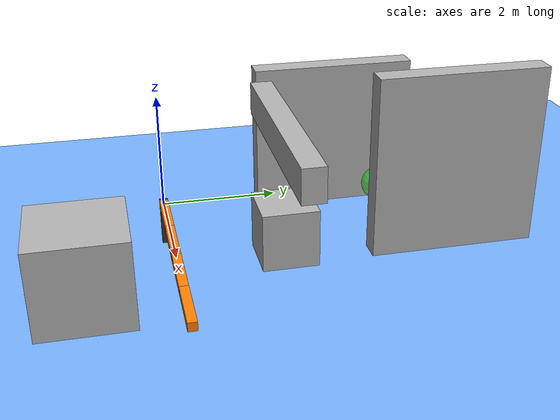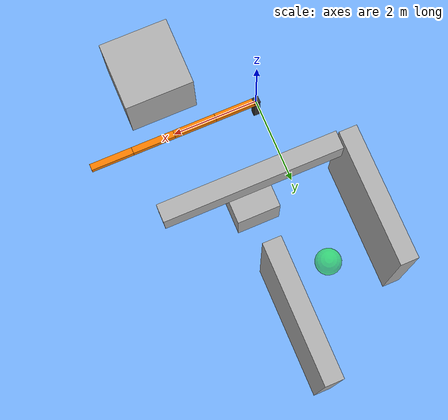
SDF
<?xml version="1.0" ?>
<sdf version='1.6'>
<world name='world'>
    <physics type="ode">
      <max_step_size>0.004</max_step_size>
      <max_contacts>5</max_contacts>
      <ode>
        <solver>
          <iters>25</iters>
          <type>world</type>
          <sor>1.3</sor>
          <use_dynamic_moi_rescaling>0</use_dynamic_moi_rescaling>
        </solver>
        <constraints>
          <cfm>0.0</cfm>
          <contact_surface_layer>0.0</contact_surface_layer>
        </constraints>
      </ode>
    </physics>
    <model name='GoalArea'>
      <pose frame=''>0 4.0 0.0 0 -0 0</pose>
      <static>1</static>
      <link name='chassis'>
        <visual name='GoalArea_visual'>
          <pose>0 0 0 0 0 0</pose>
          <geometry>
            <sphere>
              <radius>0.3</radius>
            </sphere>
          </geometry>
          <material>
            <script>
              <uri>file://media/materials/scripts/gazebo.material</uri>
              <name>Gazebo/Grey</name>
            </script>
            <ambient>0 1 0 0.5</ambient>
          </material>
        </visual>
        <self_collide>0</self_collide>
        <kinematic>0</kinematic>
      </link>
    </model>

    <model name="4DOFManipulator">
      <static>false</static>
      <include>
        <uri>model://4DOFManipulator</uri>
        <pose>0.0 0.0 0.0 0 0 0</pose>
      </include>
    </model>

  <model name="foor">
      <pose frame=''>0 0 -0.75 0 0 0</pose>
      <static>1</static>
      <link name="foorlink">
      <visual name="foorvisual">
        <geometry>
          <box>
            <size>100 100 0.005</size>
          </box>
        </geometry>
        <material>
            <ambient>0.46274509803921568627 0.6980392156862745098 1 1.0</ambient>
          </material>
      </visual>
      <collision name="foorcollision">
        <geometry>
          <box>
            <size>10 10 0.005</size>
          </box>
        </geometry>
      </collision>
    </link>
  </model>

  <model name="base">
      <pose frame=''>0 0 -0.425 0 0 0</pose>
      <static>1</static>
      <link name="baselink">
      <visual name="basevisual">
        <geometry>
          <box>
            <size>0.15 0.15 1</size>
          </box>
        </geometry>
        <material>
          <ambient>0.2 0.2 0.2 1.0</ambient>
        </material>
      </visual>
    </link>
  </model>

  <model name="box1">
      <pose frame=''>-1.2 3.4 -1.0 0 0 0</pose>
      <static>1</static>
      <link name="box1link">
      <visual name="box1visual">
        <geometry>
          <box>
            <size>0.4 3.0 6.0</size>
          </box>
        </geometry>
        <material>
          <ambient>0.7 0.7 0.7 1.0</ambient>
        </material>
      </visual>
      <collision name="box1collision">
        <geometry>
          <box>
            <size>0.4 3.0 6.0</size>
          </box>
        </geometry>
      </collision>
    </link>
  </model>

  <model name="box2">
      <pose frame=''>1.2 5.0 -0.5 0 0 0</pose>
      <static>1</static>
      <link name="box2link">
      <visual name="box2visual">
        <geometry>
          <box>
            <size>0.4 3.0 6.0</size>
          </box>
        </geometry>
        <material>
          <ambient>0.7 0.7 0.7 1.0</ambient>
        </material>
      </visual>
      <collision name="box2collision">
        <geometry>
          <box>
            <size>0.4 3.0 6.0</size>
          </box>
        </geometry>
      </collision>
    </link>
  </model>

  <model name="box3">
      <pose frame=''>1.0 2.0 -0.5 0 0 0</pose>
      <static>1</static>
      <link name="box3link">
      <visual name="box3visual">
        <geometry>
          <box>
            <size>1.0 1.0 1.6</size>
          </box>
        </geometry>
        <material>
          <ambient>0.7 0.7 0.7 1.0</ambient>
        </material>
      </visual>
      <collision name="box3collision">
        <geometry>
          <box>
            <size>1.0 1.0 1.6</size>
          </box>
        </geometry>
      </collision>
    </link>
  </model>

  <model name="box4">
      <pose frame=''>1.0 2.0 1.5 0 0 0</pose>
      <static>1</static>
      <link name="box4link">
      <visual name="box4visual">
        <geometry>
          <box>
            <size>4.0 0.4 0.6</size>
          </box>
        </geometry>
        <material>
          <ambient>0.7 0.7 0.7 1.0</ambient>
        </material>
      </visual>
      <collision name="box3collision">
        <geometry>
          <box>
            <size>4.0 0.4 0.6</size>
          </box>
        </geometry>
      </collision>
    </link>
  </model>

  <model name="box5">
      <pose frame=''>2.0 -1.5 0.0 0 0 0</pose>
      <static>1</static>
      <link name="box5link">
      <visual name="box5visual">
        <geometry>
          <box>
            <size>1.6 1.6 1.6</size>
          </box>
        </geometry>
        <material>
          <ambient>0.7 0.7 0.7 1.0</ambient>
        </material>
      </visual>
      <collision name="box5collision">
        <geometry>
          <box>
            <size>1.6 1.6 1.6</size>
          </box>
        </geometry>
      </collision>
    </link>
  </model>

        <light name='user_spot_light_0' type='spot'>
      <pose frame=''>-0.008974 0.005149 2 0 -0 0</pose>
      <diffuse>0.5 0.5 0.5 1</diffuse>
      <specular>0.1 0.1 0.1 1</specular>
      <direction>0 0 -1</direction>
      <attenuation>
        <range>20</range>
        <constant>0.5</constant>
        <linear>0.01</linear>
        <quadratic>0.001</quadratic>
      </attenuation>
      <cast_shadows>0</cast_shadows>
      <spot>
        <inner_angle>0.6</inner_angle>
        <outer_angle>1</outer_angle>
        <falloff>1</falloff>
      </spot>
    </light>
    <light name='user_directional_light_0' type='directional'>
      <pose frame=''>0.080405 1.64708 1 -0.7 -0 0</pose>
      <diffuse>0.5 0.5 0.5 1</diffuse>
      <specular>0.1 0.1 0.1 1</specular>
      <direction>0.1 0.1 -0.9</direction>
      <attenuation>
        <range>20</range>
        <constant>0.5</constant>
        <linear>0.01</linear>
        <quadratic>0.001</quadratic>
      </attenuation>
      <cast_shadows>1</cast_shadows>
    </light>
</world>
</sdf>

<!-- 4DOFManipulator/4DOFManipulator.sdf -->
<sdf version='1.6'>
  <model name='4DOFManipulator'>
    <link name="link1">
      <pose frame=''>0 0 0 0 0 0</pose>
      <inertial>
        <pose frame='link1'>0.5 0 0 0 0 0</pose>
        <mass>1.0</mass>
        <inertia>
          <ixx>0.005</ixx>
          <ixy>0.</ixy>
          <ixz>0.0</ixz>
          <iyy>0.006</iyy>
          <izz>0.003</izz>
        </inertia>
      </inertial>
      <collision name='link1_collision'>
        <pose frame=''>0.5 0 0 0 0 0</pose>
        <geometry>
          <box>
            <size>1 0.15 0.15</size>
          </box>
        </geometry>
      </collision>
      <visual name='link1_visual'>
        <pose frame=''>0.5 0 0 0 0 0</pose>
        <geometry>
          <box>
            <size>1 0.15 0.15</size>
          </box>
        </geometry>
        <material>
          <ambient>1.0 0.5019607843137254902 0 1.0</ambient>
        </material>
      </visual>
      <self_collide>0</self_collide>
    </link>

    <link name="link2">
      <pose frame=''>1 0 0 0 0 0</pose>
      <inertial>
        <pose frame='link2'>0.5 0 0 0 0 0</pose>
        <mass>1.0</mass>
        <inertia>
          <ixx>0.005</ixx>
          <ixy>0.</ixy>
          <ixz>0.0</ixz>
          <iyy>0.006</iyy>
          <izz>0.003</izz>
        </inertia>
      </inertial>
      <collision name='link2_collision'>
        <pose frame=''>0.5 0 0 0 0 0</pose>
        <geometry>
          <box>
            <size>1 0.15 0.15</size>
          </box>
        </geometry>
      </collision>
      <visual name='link2_visual'>
        <pose frame=''>0.5 0 0 0 0 0</pose>
        <geometry>
          <box>
            <size>1 0.15 0.15</size>
          </box>
        </geometry>
        <material>
          <ambient>1.0 0.5019607843137254902 0 1.0</ambient>
        </material>
      </visual>
      <self_collide>0</self_collide>
    </link>

    <link name="link3">
      <pose frame=''>2 0 0 0 0 0</pose>
      <inertial>
        <pose frame='link3'>0.5 0 0 0 0 0</pose>
        <mass>1.0</mass>
        <inertia>
          <ixx>0.005</ixx>
          <ixy>0.</ixy>
          <ixz>0.0</ixz>
          <iyy>0.006</iyy>
          <izz>0.003</izz>
        </inertia>
      </inertial>
      <collision name='link3_collision'>
        <pose frame=''>0.5 0 0 0 0 0</pose>
        <geometry>
          <box>
            <size>1 0.15 0.15</size>
          </box>
        </geometry>
      </collision>
      <visual name='link3_visual'>
        <pose frame=''>0.5 0 0 0 0 0</pose>
        <geometry>
          <box>
            <size>1 0.15 0.15</size>
          </box>
        </geometry>
        <material>
          <ambient>1.0 0.5019607843137254902 0 1.0</ambient>
        </material>
      </visual>
      <self_collide>0</self_collide>
    </link>

    <link name="link4">
      <pose frame=''>3 0 0 0 0 0</pose>
      <inertial>
        <pose frame='link4'>0.5 0 0 0 0 0</pose>
        <mass>1.0</mass>
        <inertia>
          <ixx>0.005</ixx>
          <ixy>0.</ixy>
          <ixz>0.0</ixz>
          <iyy>0.006</iyy>
          <izz>0.003</izz>
        </inertia>
      </inertial>
      <collision name='link4_collision'>
        <pose frame=''>0.5 0 0 0 0 0</pose>
        <geometry>
          <box>
            <size>1 0.15 0.15</size>
          </box>
        </geometry>
      </collision>
      <visual name='link4_visual'>
        <pose frame=''>0.5 0 0 0 0 0</pose>
        <geometry>
          <box>
            <size>1 0.15 0.15</size>
          </box>
        </geometry>
        <material>
          <ambient>1.0 0.5019607843137254902 0 1.0</ambient>
        </material>
      </visual>
      <self_collide>0</self_collide>
    </link>

    <joint name="joint1" type="revolute">
      <parent>world</parent>
      <child>link1</child>
      <axis>
        <xyz>0 0 1</xyz>
        <limit>
          <lower>-0.64159265358979323846</lower>
          <upper>2.64159265358979323846</upper>
          <velocity>6</velocity>
          <effort>50</effort>
        </limit>
        <dynamics>
          <damping>1.0</damping>
          <friction>0.2</friction>
        </dynamics>
        <use_parent_model_frame>1</use_parent_model_frame>
      </axis>
      <physics>
        <ode>
          <implicit_spring_damper>1</implicit_spring_damper>
          <bounce>0</bounce>
          <limit>
            <erp>0.9</erp>
            <cfm>0</cfm>
          </limit>
        </ode>
      </physics>
    </joint>

    <joint name="joint2" type="revolute">
      <parent>link1</parent>
      <child>link2</child>
      <axis>
        <xyz>0 1 0</xyz>
        <limit>
          <lower>-1.74159265358979323846</lower>
          <upper>1.74159265358979323846</upper>
          <velocity>2</velocity>
          <effort>30</effort>
        </limit>
        <dynamics>
          <damping>1.0</damping>
          <friction>0.2</friction>
        </dynamics>
        <use_parent_model_frame>1</use_parent_model_frame>
      </axis>
      <physics>
        <ode>
          <implicit_spring_damper>1</implicit_spring_damper>
          <bounce>0</bounce>
          <limit>
            <erp>0.9</erp>
            <cfm>0</cfm>
          </limit>
        </ode>
      </physics>
    </joint>

    <joint name="joint3" type="revolute">
      <parent>link2</parent>
      <child>link3</child>
      <axis>
        <xyz>0 1 0</xyz>
        <limit>
          <lower>-2.54159265358979323846</lower>
          <upper>2.54159265358979323846</upper>
          <velocity>2</velocity>
          <effort>40</effort>
        </limit>
        <dynamics>
          <damping>1.0</damping>
          <friction>0.2</friction>
        </dynamics>
        <use_parent_model_frame>1</use_parent_model_frame>
      </axis>
      <physics>
        <ode>
          <implicit_spring_damper>1</implicit_spring_damper>
          <bounce>0</bounce>
          <limit>
            <erp>0.9</erp>
            <cfm>0</cfm>
          </limit>
        </ode>
      </physics>
    </joint>

    <joint name="joint4" type="revolute">
      <parent>link3</parent>
      <child>link4</child>
      <axis>
        <xyz>0 0 1</xyz>
        <limit>
          <lower>-1.94159265358979323846</lower>
          <upper>1.94159265358979323846</upper>
          <velocity>2</velocity>
          <effort>5</effort>
        </limit>
        <dynamics>
          <damping>1.0</damping>
          <friction>0.2</friction>
        </dynamics>
        <use_parent_model_frame>1</use_parent_model_frame>
      </axis>
      <physics>
        <ode>
          <implicit_spring_damper>1</implicit_spring_damper>
          <bounce>0</bounce>
          <limit>
            <erp>0.9</erp>
            <cfm>0</cfm>
          </limit>
        </ode>
      </physics>
    </joint>
  </model>
</sdf>
